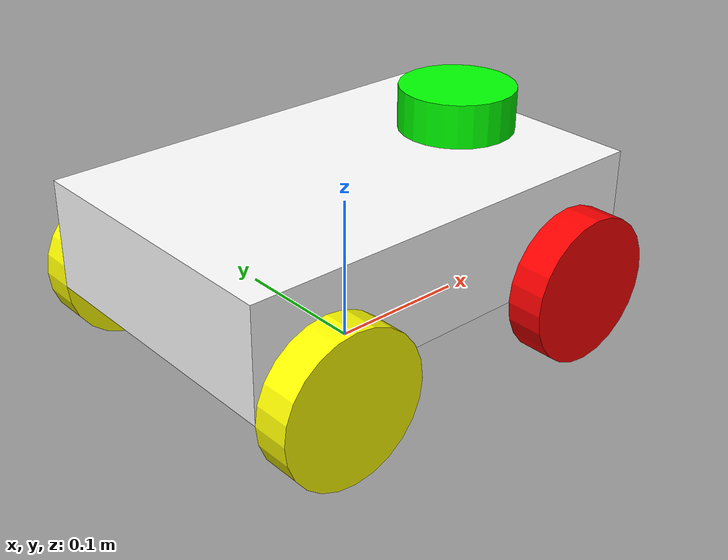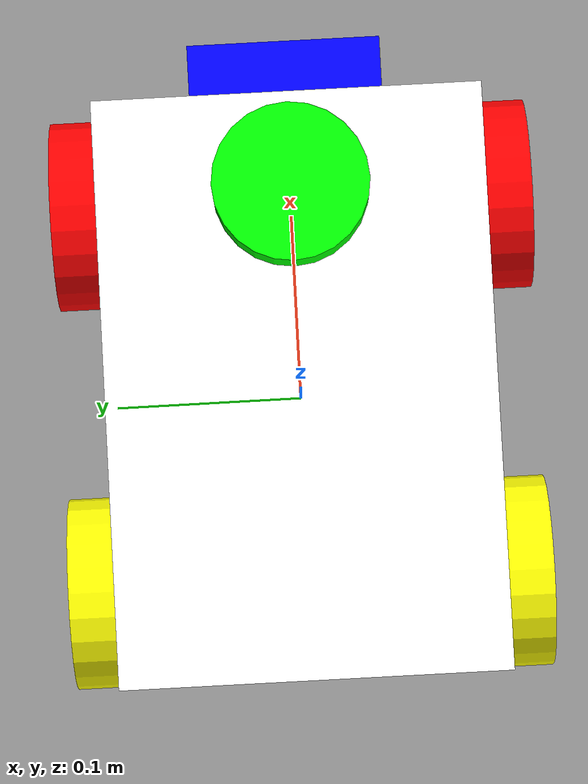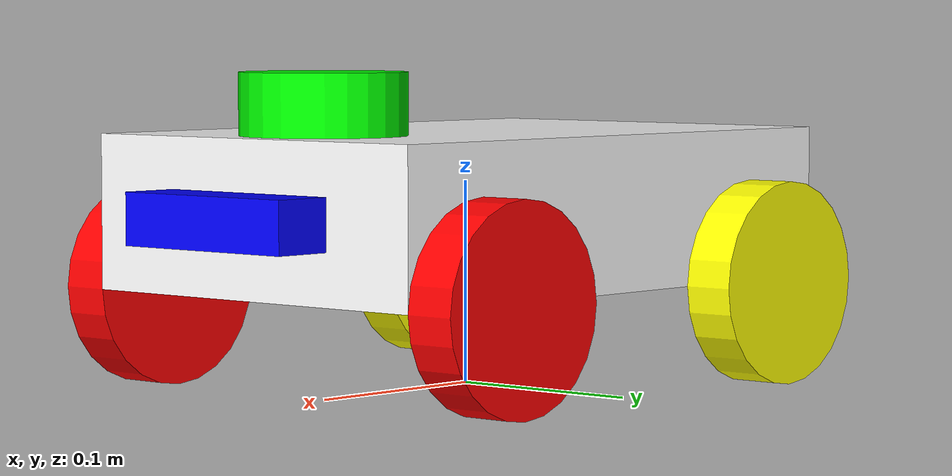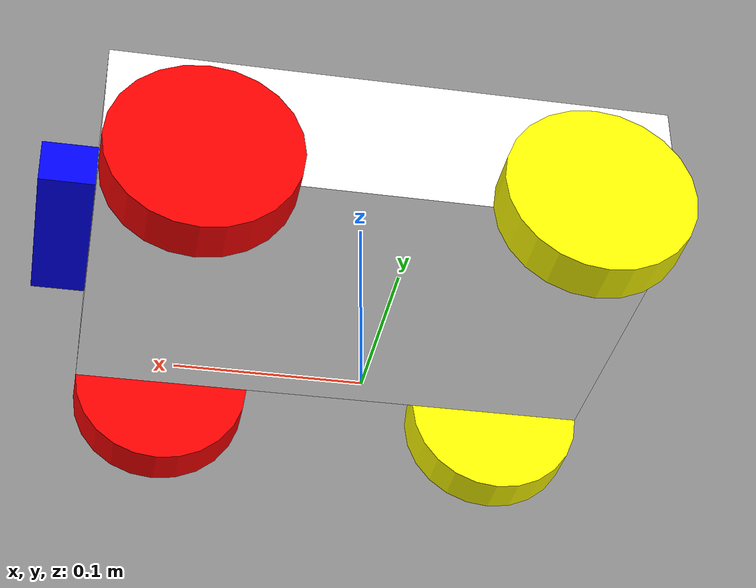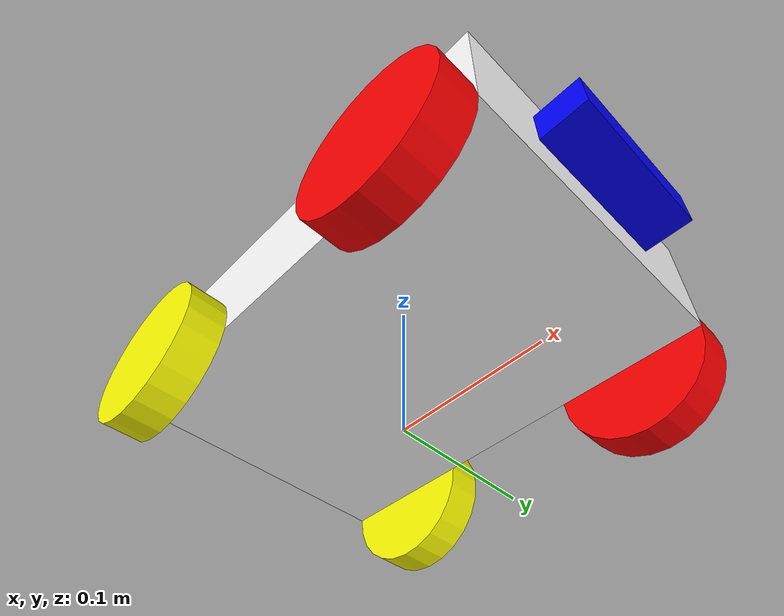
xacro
<?xml version="1.0" ?>
<!-- |    This document was autogenerated by xacro from urdf/robot.xacro               | -->
<!-- |    EDITING THIS FILE BY HAND IS NOT RECOMMENDED                                 | -->
<robot name="wrv4" xmlns:xacro="http://www.ros.org/wiki/xacro">

  <xacro:arg name="four_wheel_drive" default="$(find wheel_robot_v4)/config/four_wheel_diff_drive.yaml" />
  <material name="pet">
    <color rgba="0.700 0.700 0.700 1.000"/>
  </material>
  <material name="green">
    <color rgba="0 1 0 1"/>
  </material>
  <material name="red">
    <color rgba="1 0 0 1"/>
  </material>
  <material name="blue">
    <color rgba="0 0 1 1"/>
  </material>
  <material name="white">
    <color rgba="1 1 1 1"/>
  </material>
  <material name="yellow">
    <color rgba="1 1 0 1"/>
  </material>
  <!--LINKS-->
  <link name="base_footprint"/>
  <link name="base_link">
    <inertial>
      <origin rpy="0 0 0" xyz="0 0 0.0"/>
      <mass value="6.935"/>
      <inertia ixx="0.026" ixy="0" ixz="0" iyy="0.055" iyz="0" izz="0.075"/>
    </inertial>
    <visual>
      <origin rpy="0 0 0" xyz="0 0 0.0"/>
      <geometry>
        <box size=".30 .20 .075"/>
        <!-- scale="0.01 0.01 0.01"/-->
      </geometry>
      <material name="white"/>
    </visual>
    <collision>
      <origin rpy="0 0 0" xyz="0 0 0.0"/>
      <geometry>
        <box size=".30 .20 .075"/>
        <!-- scale="0.01 0.01 0.01"/-->
      </geometry>
    </collision>
  </link>
  <link name="wheelfl_link">
    <inertial>
      <origin rpy="0 0 0" xyz="0 0 0"/>
      <mass value="0.303"/>
      <inertia ixx="2.05e-04" ixy="0" ixz="0" iyy="2.05e-04" iyz="0" izz="3.79e-04"/>
    </inertial>
    <visual>
      <origin rpy="0 0 0" xyz="0 0 0"/>
      <geometry>
        <cylinder length="0.025" radius="0.05"/>
      </geometry>
      <material name="red"/>
    </visual>
    <collision>
      <origin rpy="0 0 0" xyz="0 0 0"/>
      <geometry>
        <cylinder length="0.025" radius="0.05"/>
      </geometry>
    </collision>
  </link>
  <link name="wheelfr_link">
    <inertial>
      <origin rpy="0 0 0" xyz="0 0 0"/>
      <mass value="0.303"/>
      <inertia ixx="2.05e-04" ixy="0" ixz="0" iyy="2.05e-04" iyz="0" izz="3.79e-04"/>
    </inertial>
    <visual>
      <origin rpy="0 0 0" xyz="0 0 0"/>
      <geometry>
        <cylinder length="0.025" radius="0.05"/>
      </geometry>
      <material name="red"/>
    </visual>
    <collision>
      <origin rpy="0 0 0" xyz="0 0 0"/>
      <geometry>
        <cylinder length="0.025" radius="0.05"/>
      </geometry>
    </collision>
  </link>
  <link name="wheelbl_link">
    <inertial>
      <origin rpy="0 0 0" xyz="0 0 0"/>
      <mass value="0.303"/>
      <inertia ixx="2.05e-04" ixy="0" ixz="0" iyy="2.05e-04" iyz="0" izz="3.79e-04"/>
    </inertial>
    <visual>
      <origin rpy="0 0 0" xyz="0 0 0"/>
      <geometry>
        <cylinder length="0.025" radius="0.05"/>
      </geometry>
      <material name="yellow"/>
    </visual>
    <collision>
      <origin rpy="0 0 0" xyz="0 0 0"/>
      <geometry>
        <cylinder length="0.025" radius="0.05"/>
      </geometry>
    </collision>
  </link>
  <link name="wheelbr_link">
    <inertial>
      <origin rpy="0 0 0" xyz="0 0 0"/>
      <mass value="0.303"/>
      <inertia ixx="2.05e-04" ixy="0" ixz="0" iyy="2.05e-04" iyz="0" izz="3.79e-04"/>
    </inertial>
    <visual>
      <origin rpy="0 0 0" xyz="0 0 0"/>
      <geometry>
        <cylinder length="0.025" radius="0.05"/>
      </geometry>
      <material name="yellow"/>
    </visual>
    <collision>
      <origin rpy="0 0 0" xyz="0 0 0"/>
      <geometry>
        <cylinder length="0.025" radius="0.05"/>
      </geometry>
    </collision>
  </link>
  <link name="camera_link">
    <inertial>
      <origin rpy="0 0 0" xyz="0 0 0"/>
      <mass value="0.116"/>
      <inertia ixx="1.03e-04" ixy="0" ixz="0" iyy="1.47e-05" iyz="0" izz="1.05e-04"/>
    </inertial>
    <visual>
      <origin rpy="0 0 0" xyz="0 0 0"/>
      <geometry>
        <box size="0.03 0.1 0.025"/>
      </geometry>
      <material name="blue"/>
    </visual>
    <collision>
      <origin rpy="0 0 0" xyz="0 0 0"/>
      <geometry>
        <box size="0.03 0.1 0.025"/>
      </geometry>
    </collision>
  </link>
  <link name="camera_color_link"/>
  <link name="base_scan">
    <inertial>
      <origin rpy="0 0 0" xyz="0 0 0"/>
      <mass value="0.232"/>
      <inertia ixx="1.102e-04" ixy="0" ixz="0" iyy="1.102e-04" iyz="0" izz="1.856e-04"/>
    </inertial>
    <visual>
      <origin rpy="0 0 0" xyz="0 0 0"/>
      <geometry>
        <cylinder length="0.03" radius="0.04"/>
      </geometry>
      <material name="green"/>
    </visual>
    <collision>
      <origin rpy="0 0 0" xyz="0 0 0"/>
      <geometry>
        <cylinder length="0.03" radius="0.04"/>
      </geometry>
    </collision>
  </link>
  <link name="imu_link">
    </link>
  <!--JOINTS-->
  <joint name="base_joint" type="fixed">
    <origin rpy="0 0 0" xyz="0 0 0.0875"/>
    <parent link="base_footprint"/>
    <child link="base_link"/>
  </joint>
  <joint name="wheelfl_joint" type="continuous">
    <origin rpy="-1.571 0 0" xyz="0.1 0.1125 -0.0375"/>
    <parent link="base_link"/>
    <child link="wheelfl_link"/>
    <axis xyz="0 0 1"/>
  </joint>
  <joint name="wheelfr_joint" type="continuous">
    <origin rpy="-1.571 0 0" xyz="0.1 -0.1125 -0.0375"/>
    <parent link="base_link"/>
    <child link="wheelfr_link"/>
    <axis xyz="0 0 1"/>
  </joint>
  <joint name="wheelbl_joint" type="continuous">
    <origin rpy="-1.571 0 0" xyz="-0.1 0.1125 -0.0375"/>
    <parent link="base_link"/>
    <child link="wheelbl_link"/>
    <axis xyz="0 0 1"/>
  </joint>
  <joint name="wheelbr_joint" type="continuous">
    <origin rpy="-1.571 0 0" xyz="-0.1 -0.1125 -0.0375"/>
    <parent link="base_link"/>
    <child link="wheelbr_link"/>
    <axis xyz="0 0 1"/>
  </joint>
  <joint name="camera_joint" type="fixed">
    <origin rpy="0 0 0" xyz="0.165 0 0.0"/>
    <parent link="base_link"/>
    <child link="camera_link"/>
  </joint>
  <joint name="camera_optical_joint" type="fixed">
    <origin rpy="0 0 0" xyz="0.015 0 0"/>
    <parent link="camera_link"/>
    <child link="camera_color_link"/>
  </joint>
  <joint name="lidar_joint" type="fixed">
    <origin rpy="0 0 0" xyz="0.1 0 0.0525"/>
    <parent link="base_link"/>
    <child link="base_scan"/>
  </joint>
  <joint name="imu_joint" type="fixed">
    <origin rpy="0 0 0" xyz="0 0 0.0"/>
    <parent link="base_link"/>
    <child link="imu_link"/>
  </joint>
  <gazebo reference="base_link">
    <material>Gazebo/White</material>
  </gazebo>
  <gazebo reference="wheelfl_link">
    <material>Gazebo/Red</material>
    <mu value="1.0"/>
    <mu2 value="0.25"/>
    <fdir1 value="1 0 0"/>
    <slip1 value="0.0"/>
    <slip2 value="0.0"/>
    <soft_cfm value="0.0"/>
    <soft_erp value="0.2"/>
    <kp value="1e+5"/>
    <kd value="1.0"/>
    <max_vel value="0.01"/>
    <min_depth value="0.001"/>
    <use_patch_radius value="False"/>
    <surface_radius value="0.05"/>
    <use_patch_radius value="False"/>
    <surface_radius value="0.05"/>
  </gazebo>
  <gazebo reference="wheelfr_link">
    <material>Gazebo/Red</material>
    <mu value="1.0"/>
    <mu2 value="0.25"/>
    <fdir1 value="1 0 0"/>
    <slip1 value="0.0"/>
    <slip2 value="0.0"/>
    <soft_cfm value="0.0"/>
    <soft_erp value="0.2"/>
    <kp value="1e+5"/>
    <kd value="1.0"/>
    <max_vel value="0.01"/>
    <min_depth value="0.001"/>
    <use_patch_radius value="False"/>
    <surface_radius value="0.05"/>
  </gazebo>
  <gazebo reference="wheelbl_link">
    <material>Gazebo/Yellow</material>
    <mu value="1.0"/>
    <mu2 value="0.25"/>
    <fdir1 value="1 0 0"/>
    <slip1 value="0.0"/>
    <slip2 value="0.0"/>
    <soft_cfm value="0.0"/>
    <soft_erp value="0.2"/>
    <kp value="1e+5"/>
    <kd value="1.0"/>
    <max_vel value="0.01"/>
    <min_depth value="0.001"/>
    <use_patch_radius value="False"/>
    <surface_radius value="0.05"/>
  </gazebo>
  <gazebo reference="wheelbr_link">
    <material>Gazebo/Yellow</material>
    <mu value="1.0"/>
    <mu2 value="0.25"/>
    <fdir1 value="1 0 0"/>
    <slip1 value="0.0"/>
    <slip2 value="0.0"/>
    <soft_cfm value="0.0"/>
    <soft_erp value="0.2"/>
    <kp value="1e+5"/>
    <kd value="1.0"/>
    <max_vel value="0.01"/>
    <min_depth value="0.001"/>
    <use_patch_radius value="False"/>
    <surface_radius value="0.05"/>
  </gazebo>
  <gazebo reference="camera_link">
    <material>Gazebo/Blue</material>
  </gazebo>
  <gazebo reference="base_scan">
    <material>Gazebo/Green</material>
  </gazebo>
  <gazebo reference="camera_color_link">
    <sensor name="color_camera" type="camera">
      <always_on>true</always_on>
      <visualize>true</visualize>
      <update_rate>30</update_rate>
      <camera name="camera">
        <horizontal_fov>1.02974</horizontal_fov>
        <image>
          <width>640</width>
          <height>480</height>
          <format>R8G8B8</format>
        </image>
        <clip>
          <near>0.02</near>
          <far>300</far>
        </clip>
        <noise>
          <type>gaussian</type>
          <mean>0.0</mean>
          <stddev>0.007</stddev>
        </noise>
      </camera>
      <plugin filename="libgazebo_ros_camera.so" name="camera_driver">
        </plugin>
    </sensor>
  </gazebo>
  <gazebo reference="base_scan">
    <sensor name="lidar" type="ray">
      <always_on>true</always_on>
      <visualize>true</visualize>
      <update_rate>30</update_rate>
      <ray>
        <scan>
          <horizontal>
            <samples>360</samples>
            <resolution>1.000000</resolution>
            <min_angle>0.000000</min_angle>
            <max_angle>6.280000</max_angle>
          </horizontal>
        </scan>
        <range>
          <min>0.12</min>
          <max>20</max>
          <resolution>0.015000</resolution>
        </range>
        <noise>
          <type>gaussian</type>
          <mean>0.0</mean>
          <stddev>0.01</stddev>
        </noise>
      </ray>
      <plugin filename="libgazebo_ros_ray_sensor.so" name="scan">
        <ros>
          <remapping>~/out:=scan</remapping>
        </ros>
        <output_type>sensor_msgs/LaserScan</output_type>
        <frame_name>base_scan</frame_name>
      </plugin>
    </sensor>
  </gazebo>
  <gazebo reference="imu_link">
    <sensor name="imu_sensor" type="imu">
      <plugin filename="libgazebo_ros_imu_sensor.so" name="wrv4_imu">
        <ros>
          <remapping>~/out:=imu</remapping>
        </ros>
      </plugin>
      <always_on>true</always_on>
      <update_rate>100</update_rate>
      <visualize>true</visualize>
      <imu>
        <angular_velocity>
          <x>
            <noise type="gaussian">
              <mean>0.0</mean>
              <stddev>2e-4</stddev>
              <bias_mean>0.0000075</bias_mean>
              <bias_stddev>0.0000008</bias_stddev>
            </noise>
          </x>
          <y>
            <noise type="gaussian">
              <mean>0.0</mean>
              <stddev>2e-4</stddev>
              <bias_mean>0.0000075</bias_mean>
              <bias_stddev>0.0000008</bias_stddev>
            </noise>
          </y>
          <z>
            <noise type="gaussian">
              <mean>0.0</mean>
              <stddev>2e-4</stddev>
              <bias_mean>0.0000075</bias_mean>
              <bias_stddev>0.0000008</bias_stddev>
            </noise>
          </z>
        </angular_velocity>
        <linear_acceleration>
          <x>
            <noise type="gaussian">
              <mean>0.0</mean>
              <stddev>1.7e-2</stddev>
              <bias_mean>0.1</bias_mean>
              <bias_stddev>0.001</bias_stddev>
            </noise>
          </x>
          <y>
            <noise type="gaussian">
              <mean>0.0</mean>
              <stddev>1.7e-2</stddev>
              <bias_mean>0.1</bias_mean>
              <bias_stddev>0.001</bias_stddev>
            </noise>
          </y>
          <z>
            <noise type="gaussian">
              <mean>0.0</mean>
              <stddev>1.7e-2</stddev>
              <bias_mean>0.1</bias_mean>
              <bias_stddev>0.001</bias_stddev>
            </noise>
          </z>
        </linear_acceleration>
      </imu>
    </sensor>
  </gazebo>
  <ros2_control name="GazeboSystem" type="system">
    <hardware>
      <plugin>gazebo_ros2_control/GazeboSystem</plugin>
    </hardware>
    <joint name="wheelfl_joint">
      <command_interface name="velocity">
        <param name="min">-1</param>
        <param name="max">1</param>
      </command_interface>
      <state_interface name="position"/>
      <state_interface name="velocity"/>
    </joint>
    <joint name="wheelfr_joint">
      <command_interface name="velocity">
        <param name="min">-1</param>
        <param name="max">1</param>
      </command_interface>
      <state_interface name="position"/>
      <state_interface name="velocity"/>
    </joint>
    <joint name="wheelbl_joint">
      <command_interface name="velocity">
        <param name="min">-1</param>
        <param name="max">1</param>
      </command_interface>
      <state_interface name="position"/>
      <state_interface name="velocity"/>
    </joint>
    <joint name="wheelbr_joint">
      <command_interface name="velocity">
        <param name="min">-1</param>
        <param name="max">1</param>
      </command_interface>
      <state_interface name="position"/>
      <state_interface name="velocity"/>
    </joint>
  </ros2_control>
  <gazebo>
    <plugin filename="libgazebo_ros2_control.so" name="gazebo_ros2_control">
      <parameters>$(arg four_wheel_drive)</parameters>
      <ros>
        <remapping>~/robot_description:=/robot_description</remapping>
        <remapping>~/cmd_vel_unstamped:=/cmd_vel</remapping>
        <remapping>~/odom:=/odom</remapping>
      </ros>
    </plugin>
  </gazebo>
</robot>
